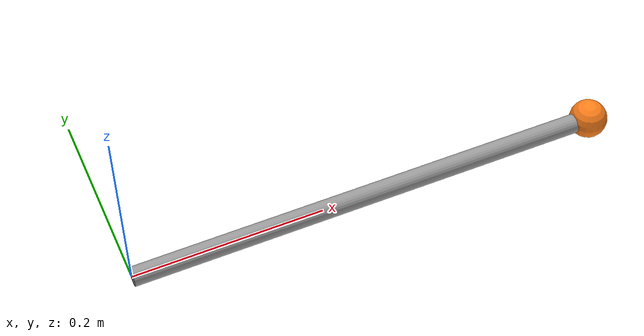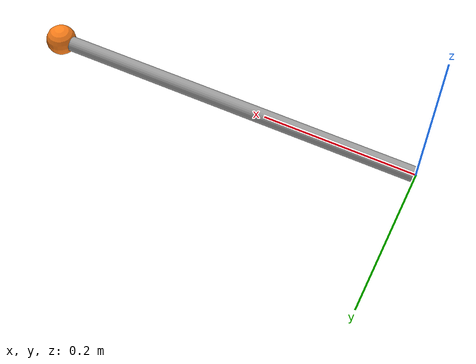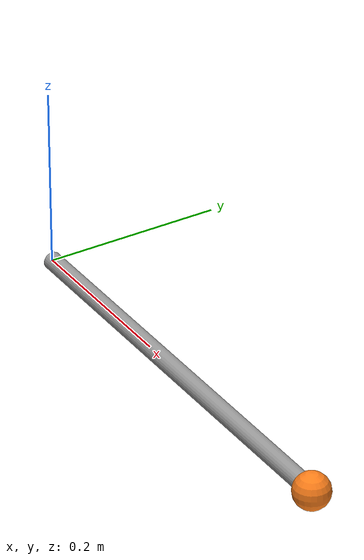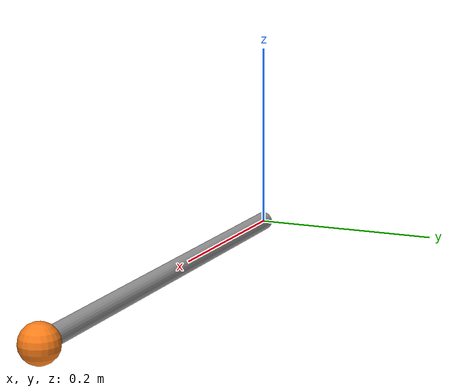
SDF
<?xml version="1.0" ?>
<sdf version="1.5">
<model name="tilthex-ee">
    <link name="base">
        <inertial>
            <mass>0.05</mass>
            <inertia>
                <ixx>0.0002</ixx><ixy>0</ixy><ixz>0</ixz>
                <iyy>0.0002</iyy><iyz>0</iyz>
                <izz>0.0002</izz>
            </inertia>
        </inertial>
        <visual name="arm_ee">
            <pose>0.25 0 0 0 1.5708 0</pose>
            <geometry>
                <cylinder><radius>0.01</radius><length>0.5</length></cylinder>
            </geometry>
            <material>
                <diffuse>0.6 0.6 0.6 1</diffuse>
            </material>
        </visual>
        <collision name="arm_ee">
            <pose>0.25 0 0 0 1.5708 0</pose>
            <geometry>
                <cylinder><radius>0.01</radius><length>0.5</length></cylinder>
            </geometry>
        </collision>

        <visual name="ee">
            <pose>0.5 0 0 0 0 0</pose>
            <geometry>
                <sphere><radius>0.02</radius></sphere>
            </geometry>
            <material>
                <diffuse>1.0 0.5 0.1 1</diffuse>
            </material>
        </visual>
        <collision name="ee_1">
            <pose>0.5 0 0.040 0 0 0</pose>
            <geometry>
                <sphere><radius>0.02</radius></sphere>
            </geometry>
        </collision>
        <collision name="ee_2">
            <pose>0.5 0.028 -0.028 0 0 0</pose>
            <geometry>
                <sphere><radius>0.02</radius></sphere>
            </geometry>
        </collision>
        <collision name="ee_3">
            <pose>0.5 -0.028 -0.028 0 0 0</pose>
            <geometry>
                <sphere><radius>0.02</radius></sphere>
            </geometry>
        </collision>
    </link>
</model>
</sdf>
